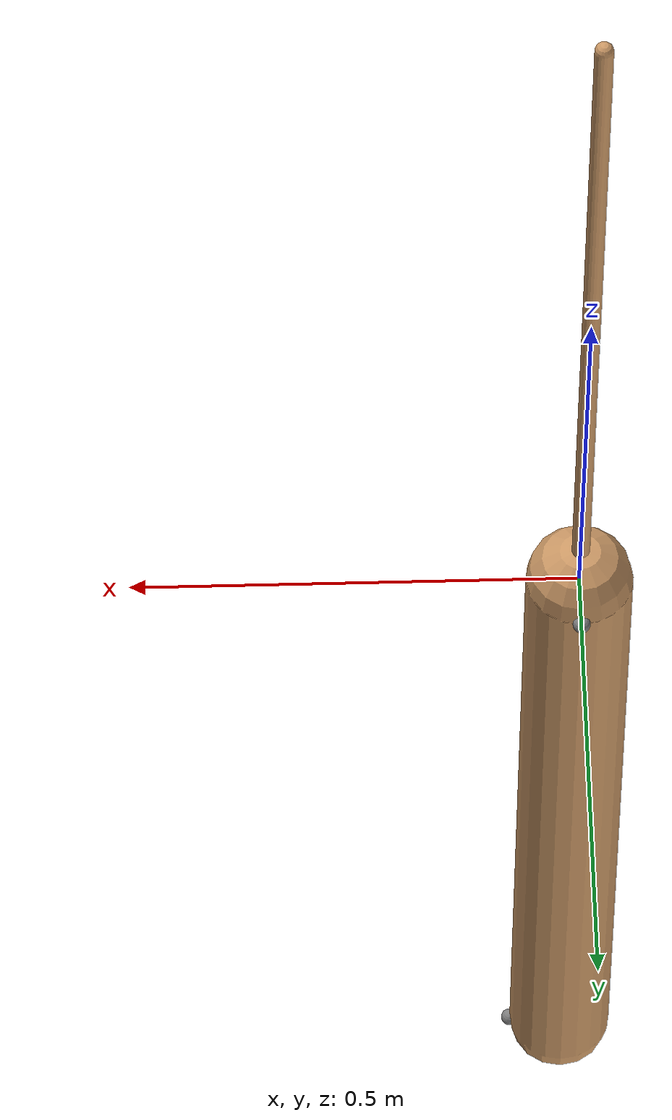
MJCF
<mujoco model="example">
	<compiler coordinate="global"/>

	<option gravity='0 0 0'/>
	<default>
		<geom rgba=".8 .6 .4 1"/>
	</default>

	<asset>
		<texture type="skybox" builtin="gradient" rgb1="1 1 1" rgb2=".6 .8 1" width="256" height="256"/>

        <texture name="texplane" type="2d" builtin="checker" rgb1=".2 .3 .4" rgb2=".1 0.15 0.2"
            width="1000" height="1000"/>

        <material name='MatPlane' reflectance='0.5' texture="texplane"/>
	</asset>

	<worldbody>
		<light pos="0 1 1" dir="0 -1 -1" diffuse="1 1 1"/>

		<geom name='floor' pos='0 0 -2' size='1 1 1' euler='0 0 0' type='plane' material="MatPlane" condim='3'/>

		<body pos="0 0 0">
			<geom type="capsule" fromto = "0 0 0 0 0 1" size = "0.01"/>
			<body name="hanging" pos="0 0 0">
				<geom type="capsule" pos="0 0 -0.5"  euler='0 0 0' size="0.06 0.5"/>

				<site name="top" pos="0 0.06 0" type="sphere" size="0.01"/>
				<site name="mid" pos="0 -0.06 -0.6" type="sphere" size="0.01"/>
				<site name="bot" pos="0.06 0 -1" type="sphere" size="0.01"/>

				<joint type="hinge" pos="0 0 0" axis='1 0 0' />
			</body>
		</body>

	</worldbody>

</mujoco>
